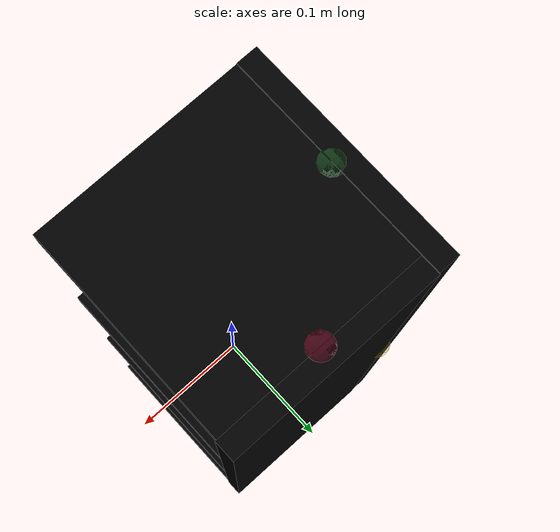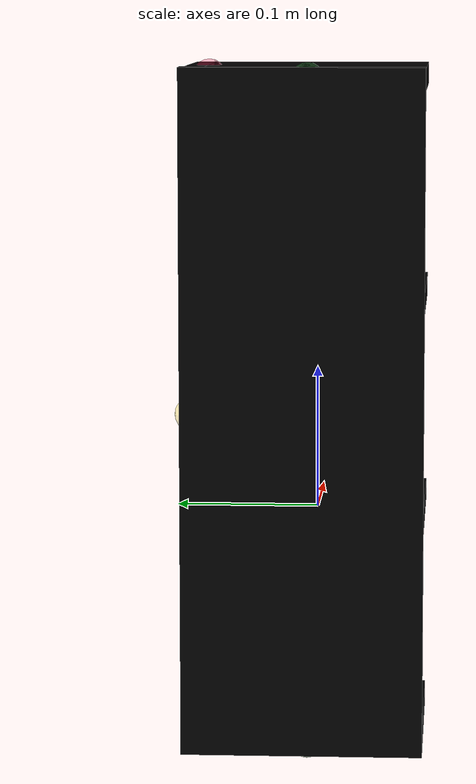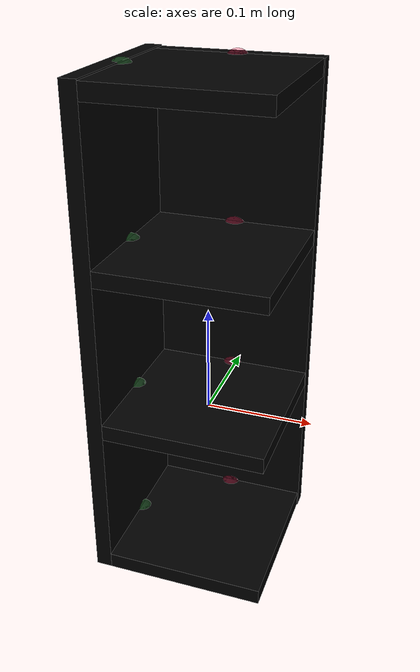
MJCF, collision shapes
<mujoco model="shelf_lillagen_0927">
    <custom>
        <numeric data="0.140321 0.26543 0.00759 0.999937 0.0 0.0 0.011207" name="0_part0_initpos"/>
        <numeric data="0.064424 0.045945 0.007465 0.502601 -0.502602 0.497385 -0.497385" name="5_part5_initpos"/>
        <numeric data="0.038382 -0.21002 0.00759 0.706675 -0.024703 -0.706675 -0.024703" name="4_part4_initpos"/>
        <numeric data="-0.36878 0.235998 0.00759 -0.995994 -0.0 0.0 -0.089418" name="3_part3_initpos"/>
        <numeric data="-0.123636 0.267952 0.00759 -0.998502 0.0 0.0 -0.054706" name="2_part2_initpos"/>
        <numeric data="0.401777 0.265276 0.00759 1.0 0.0 0.0 2.6e-05" name="1_part1_initpos"/>
    </custom>
    <asset>
        <mesh file="shelf_lillagen_0927/0.stl" name="part0" scale="0.0006 0.0006 0.0006"/>
        <mesh file="shelf_lillagen_0927/5.stl" name="part5" scale="0.0006 0.0006 0.0006"/>
        <mesh file="shelf_lillagen_0927/4.stl" name="part4" scale="0.0006 0.0006 0.0006"/>
        <mesh file="shelf_lillagen_0927/3.stl" name="part3" scale="0.0006 0.0006 0.0006"/>
        <mesh file="shelf_lillagen_0927/2.stl" name="part2" scale="0.0006 0.0006 0.0006"/>
        <mesh file="shelf_lillagen_0927/1.stl" name="part1" scale="0.0006 0.0006 0.0006"/>
    </asset>
    <equality>
        <weld active="false" body1="3_part3" body2="4_part4" solimp="1 1 0.5" solref="0.01 0.3"/>
        <weld active="false" body1="1_part1" body2="4_part4" solimp="1 1 0.5" solref="0.01 0.3"/>
        <weld active="false" body1="2_part2" body2="4_part4" solimp="1 1 0.5" solref="0.01 0.3"/>
        <weld active="false" body1="0_part0" body2="4_part4" solimp="1 1 0.5" solref="0.01 0.3"/>
        <weld active="false" body1="5_part5" body2="4_part4" solimp="1 1 0.5" solref="0.01 0.3"/>
        <weld active="false" body1="3_part3" body2="5_part5" solimp="1 1 0.5" solref="0.01 0.3"/>
        <weld active="false" body1="1_part1" body2="5_part5" solimp="1 1 0.5" solref="0.01 0.3"/>
        <weld active="false" body1="2_part2" body2="5_part5" solimp="1 1 0.5" solref="0.01 0.3"/>
        <weld active="false" body1="0_part0" body2="5_part5" solimp="1 1 0.5" solref="0.01 0.3"/>
    </equality>
    <worldbody>
        <body name="0_part0" pos="-0.0 0.0 0.0" quat="1 0 0 0">
            <geom conaffinity="0" contype="0" density="0" mesh="part0" name="0_part0_mesh" pos="0.0 0.0 0.0"
                  rgba="0.82 0.71 0.55 1" type="mesh"/>
            <site name="0_part0_horizontal_radius_site" pos="-0.0 0.0 0.0" quat="1 0 0 0" rgba="0 0 0 0" size="0.012"/>
            <site name="0_part0_top_site" pos="0.0 0.0 0.007619999999999999" quat="1 0 0 0" rgba="0 0 0 0"
                  size="0.012"/>
            <site name="0_part0_bottom_site" pos="0.0 0.0 -0.007619999999999999" quat="1 0 0 0" rgba="0 0 0 0"
                  size="0.012"/>
            <site name="0_part0_corner_site8" pos="-0.07619999999999999 0.07619999999999999 0.007619999999999999"
                  quat="1 0 0 0" rgba="0 0 0 0" size="0.012"/>
            <site name="0_part0_corner_site7" pos="0.07619999999999999 0.07619999999999999 0.007619999999999999"
                  quat="1 0 0 0" rgba="0 0 0 0" size="0.012"/>
            <site name="0_part0_corner_site6" pos="0.07619999999999999 -0.07619999999999999 0.007619999999999999"
                  quat="1 0 0 0" rgba="0 0 0 0" size="0.012"/>
            <site name="0_part0_corner_site5" pos="-0.07619999999999999 -0.07619999999999999 0.007619999999999999"
                  quat="1 0 0 0" rgba="0 0 0 0" size="0.012"/>
            <site name="0_part0_corner_site4" pos="-0.07619999999999999 0.07619999999999999 -0.007619999999999999"
                  quat="1 0 0 0" rgba="0 0 0 0" size="0.012"/>
            <site name="0_part0_corner_site3" pos="0.07619999999999999 0.07619999999999999 -0.007619999999999999"
                  quat="1 0 0 0" rgba="0 0 0 0" size="0.012"/>
            <site name="0_part0_corner_site2" pos="0.07619999999999999 -0.07619999999999999 -0.007619999999999999"
                  quat="1 0 0 0" rgba="0 0 0 0" size="0.012"/>
            <site name="0_part0_corner_site1" pos="-0.07619999999999999 -0.07619999999999999 -0.007619999999999999"
                  quat="1 0 0 0" rgba="0 0 0 0" size="0.012"/>
            <site name="panel-rightpanel,0,180,conn_site2" pos="0.0 0.07632 0.0" quat="0.7071067 -0.7071068 0 0"
                  rgba="0.9019 0.0980 0.2941 0.3" size="0.012"/>
            <site name="panel-leftpanel,0,180,conn_site3" pos="-0.07632 0.003810006 0.0" quat="0.7071067 0 -0.7071068 0"
                  rgba="0.2352 0.7058 0.2941 0.3" size="0.012"/>
            <geom density="50" name="noviz_collision_0_part0_0" pos="0.0 0.0 0.0" quat="1 0 0 0" rgba="0 0 0 0"
                  size="0.07619999999999999 0.07619999999999999 0.007619999999999999" solref="0.001 1" type="box"/>
        </body>
        <body name="5_part5" pos="-0.0 0.08382001188 0.07620000732" quat="1 0 0 0">
            <geom conaffinity="0" contype="0" density="0" mesh="part5" name="5_part5_mesh" pos="0.0 0.0 0.0"
                  rgba="0.82 0.71 0.55 1" type="mesh"/>
            <site name="5_part5_horizontal_radius_site" pos="0.0 5.999999999999999e-11 0.0" quat="1 0 0 0"
                  rgba="0 0 0 0" size="0.012"/>
            <site name="5_part5_top_site" pos="0.0 0.0 0.23622000731999998" quat="1 0 0 0" rgba="0 0 0 0" size="0.012"/>
            <site name="5_part5_bottom_site" pos="0.0 0.0 -0.23622000731999998" quat="1 0 0 0" rgba="0 0 0 0"
                  size="0.012"/>
            <site name="5_part5_corner_site8" pos="-0.07619999999999999 0.007620011879999999 0.23622000731999998"
                  quat="1 0 0 0" rgba="0 0 0 0" size="0.012"/>
            <site name="5_part5_corner_site7" pos="0.07619999999999999 0.007620011879999999 0.23622000731999998"
                  quat="1 0 0 0" rgba="0 0 0 0" size="0.012"/>
            <site name="5_part5_corner_site6" pos="0.07619999999999999 -0.00762001182 0.23622000731999998"
                  quat="1 0 0 0" rgba="0 0 0 0" size="0.012"/>
            <site name="5_part5_corner_site5" pos="-0.07619999999999999 -0.00762001182 0.23622000731999998"
                  quat="1 0 0 0" rgba="0 0 0 0" size="0.012"/>
            <site name="5_part5_corner_site4" pos="-0.07619999999999999 0.007620011879999999 -0.23622000731999998"
                  quat="1 0 0 0" rgba="0 0 0 0" size="0.012"/>
            <site name="5_part5_corner_site3" pos="0.07619999999999999 0.007620011879999999 -0.23622000731999998"
                  quat="1 0 0 0" rgba="0 0 0 0" size="0.012"/>
            <site name="5_part5_corner_site2" pos="0.07619999999999999 -0.00762001182 -0.23622000731999998"
                  quat="1 0 0 0" rgba="0 0 0 0" size="0.012"/>
            <site name="5_part5_corner_site1" pos="-0.07619999999999999 -0.00762001182 -0.23622000731999998"
                  quat="1 0 0 0" rgba="0 0 0 0" size="0.012"/>
            <site name="rightpanel-leftpanel,0,180,conn_site1"
                  pos="-0.07559999999999999 -0.0007800119999999998 -1.2e-08" quat="1 0 0 0" rgba="1.0 0.8823 0.0980 0.3"
                  size="0.012"/>
            <site name="rightpanel-panel,0,180,conn_site4" pos="0.0 -0.007380006 0.22859999999999997"
                  quat="0.7071067 -0.7071068 0 0" rgba="0.9019 0.0980 0.2941 0.3" size="0.012"/>
            <site name="rightpanel-panel,0,180,conn_site3" pos="0.0 -0.007500011999999999 0.07619999999999999"
                  quat="0.7071067 -0.7071068 0 0" rgba="0.9019 0.0980 0.2941 0.3" size="0.012"/>
            <site name="rightpanel-panel,0,180,conn_site2" pos="0.0 -0.007500011999999999 -0.07619999999999999"
                  quat="0.7071067 -0.7071068 0 0" rgba="0.9019 0.0980 0.2941 0.3" size="0.012"/>
            <site name="rightpanel-panel,0,180,conn_site1" pos="0.0 -0.007500011999999999 -0.22859999999999997"
                  quat="0.7071067 -0.7071068 0 0" rgba="0.9019 0.0980 0.2941 0.3" size="0.012"/>
            <geom density="50" name="noviz_collision_5_part5_0" pos="0.000276378 -6.228599999999999e-05 -1.2e-08"
                  quat="1 0 0 0" rgba="0 0 0 0" size="0.07647636 0.007557725999999999 0.23621999999999999"
                  solref="0.001 1" type="box"/>
        </body>
        <body name="4_part4" pos="-0.08381999904 0.007620009599999999 0.07620000732" quat="1 0 0 0">
            <geom conaffinity="0" contype="0" density="0" mesh="part4" name="4_part4_mesh" pos="0.0 0.0 0.0"
                  rgba="0.82 0.71 0.55 1" type="mesh"/>
            <site name="4_part4_horizontal_radius_site" pos="1.1999999999999997e-10 -2.28e-09 0.0" quat="1 0 0 0"
                  rgba="0 0 0 0" size="0.012"/>
            <site name="4_part4_top_site" pos="5.999999999999999e-11 -2.28e-09 0.23622000731999998" quat="1 0 0 0"
                  rgba="0 0 0 0" size="0.012"/>
            <site name="4_part4_bottom_site" pos="5.999999999999999e-11 -2.28e-09 -0.23622000731999998" quat="1 0 0 0"
                  rgba="0 0 0 0" size="0.012"/>
            <site name="4_part4_corner_site8" pos="-0.007620000839999999 0.08382000732 0.23622000731999998"
                  quat="1 0 0 0" rgba="0 0 0 0" size="0.012"/>
            <site name="4_part4_corner_site7" pos="0.007620001019999999 0.08382000732 0.23622000731999998"
                  quat="1 0 0 0" rgba="0 0 0 0" size="0.012"/>
            <site name="4_part4_corner_site6" pos="0.007620001019999999 -0.08382001182 0.23622000731999998"
                  quat="1 0 0 0" rgba="0 0 0 0" size="0.012"/>
            <site name="4_part4_corner_site5" pos="-0.007620000839999999 -0.08382001182 0.23622000731999998"
                  quat="1 0 0 0" rgba="0 0 0 0" size="0.012"/>
            <site name="4_part4_corner_site4" pos="-0.007620000839999999 0.08382000732 -0.23622000731999998"
                  quat="1 0 0 0" rgba="0 0 0 0" size="0.012"/>
            <site name="4_part4_corner_site3" pos="0.007620001019999999 0.08382000732 -0.23622000731999998"
                  quat="1 0 0 0" rgba="0 0 0 0" size="0.012"/>
            <site name="4_part4_corner_site2" pos="0.007620001019999999 -0.08382001182 -0.23622000731999998"
                  quat="1 0 0 0" rgba="0 0 0 0" size="0.012"/>
            <site name="4_part4_corner_site1" pos="-0.007620000839999999 -0.08382001182 -0.23622000731999998"
                  quat="1 0 0 0" rgba="0 0 0 0" size="0.012"/>
            <site name="leftpanel-rightpanel,0,180,conn_site1" pos="0.008219999999999998 0.07542 -1.2e-08"
                  quat="1 0 0 0" rgba="1.0 0.8823 0.0980 0.3" size="0.012"/>
            <site name="leftpanel-panel,0,180,conn_site4" pos="0.0075 -0.003810006 -0.22859999999999997"
                  quat="0.7071067 0 -0.7071068 0" rgba="0.2352 0.7058 0.2941 0.3" size="0.012"/>
            <site name="leftpanel-panel,0,180,conn_site3" pos="0.0075 -0.003810006 -0.07619999999999999"
                  quat="0.7071067 0 -0.7071068 0" rgba="0.2352 0.7058 0.2941 0.3" size="0.012"/>
            <site name="leftpanel-panel,0,180,conn_site2" pos="0.0075 -0.003810006 0.07619999999999999"
                  quat="0.7071067 0 -0.7071068 0" rgba="0.2352 0.7058 0.2941 0.3" size="0.012"/>
            <site name="leftpanel-panel,0,180,conn_site1" pos="0.0075 -0.003810006 0.22859999999999997"
                  quat="0.7071067 0 -0.7071068 0" rgba="0.2352 0.7058 0.2941 0.3" size="0.012"/>
            <geom density="50" name="noviz_collision_4_part4_0"
                  pos="6.906599999999999e-05 -0.00036487799999999996 0.000610164" quat="1 0 0 0" rgba="0 0 0 0"
                  size="0.007689066 0.08345514 0.23683019999999996" solref="0.001 1" type="box"/>
        </body>
        <body name="3_part3" pos="-0.0 4.56e-09 0.30480000731999995" quat="1 0 0 0">
            <geom conaffinity="0" contype="0" density="0" mesh="part3" name="3_part3_mesh" pos="0.0 0.0 0.0"
                  rgba="0.82 0.71 0.55 1" type="mesh"/>
            <site name="3_part3_horizontal_radius_site" pos="0.0 5.999999999999999e-11 0.0" quat="1 0 0 0"
                  rgba="0 0 0 0" size="0.012"/>
            <site name="3_part3_top_site" pos="0.0 5.999999999999999e-11 0.007620007319999999" quat="1 0 0 0"
                  rgba="0 0 0 0" size="0.012"/>
            <site name="3_part3_bottom_site" pos="0.0 5.999999999999999e-11 -0.007620007319999999" quat="1 0 0 0"
                  rgba="0 0 0 0" size="0.012"/>
            <site name="3_part3_corner_site8" pos="-0.07619999999999999 0.07620000455999999 0.007620007319999999"
                  quat="1 0 0 0" rgba="0 0 0 0" size="0.012"/>
            <site name="3_part3_corner_site7" pos="0.07619999999999999 0.07620000455999999 0.007620007319999999"
                  quat="1 0 0 0" rgba="0 0 0 0" size="0.012"/>
            <site name="3_part3_corner_site6" pos="0.07619999999999999 -0.07620000449999999 0.007620007319999999"
                  quat="1 0 0 0" rgba="0 0 0 0" size="0.012"/>
            <site name="3_part3_corner_site5" pos="-0.07619999999999999 -0.07620000449999999 0.007620007319999999"
                  quat="1 0 0 0" rgba="0 0 0 0" size="0.012"/>
            <site name="3_part3_corner_site4" pos="-0.07619999999999999 0.07620000455999999 -0.007620007319999999"
                  quat="1 0 0 0" rgba="0 0 0 0" size="0.012"/>
            <site name="3_part3_corner_site3" pos="0.07619999999999999 0.07620000455999999 -0.007620007319999999"
                  quat="1 0 0 0" rgba="0 0 0 0" size="0.012"/>
            <site name="3_part3_corner_site2" pos="0.07619999999999999 -0.07620000449999999 -0.007620007319999999"
                  quat="1 0 0 0" rgba="0 0 0 0" size="0.012"/>
            <site name="3_part3_corner_site1" pos="-0.07619999999999999 -0.07620000449999999 -0.007620007319999999"
                  quat="1 0 0 0" rgba="0 0 0 0" size="0.012"/>
            <site name="panel-rightpanel,0,180,conn_site4" pos="0.0 0.07644 0.0" quat="0.7071067 -0.7071068 0 0"
                  rgba="0.9019 0.0980 0.2941 0.3" size="0.012"/>
            <site name="panel-leftpanel,0,180,conn_site1" pos="-0.07632 0.0038099999999999996 0.0"
                  quat="0.7071067 0 -0.7071068 0" rgba="0.2352 0.7058 0.2941 0.3" size="0.012"/>
            <geom density="50" name="noviz_collision_3_part3_0"
                  pos="-0.00021655799999999997 0.00021655199999999998 1.5251999999999999e-05" quat="1 0 0 0"
                  rgba="0 0 0 0" size="0.07598345999999999 0.07641653999999999 0.007635257999999999" solref="0.001 1"
                  type="box"/>
        </body>
        <body name="2_part2" pos="-0.0 4.56e-09 -0.15239999999999998" quat="1 0 0 0">
            <geom conaffinity="0" contype="0" density="0" mesh="part2" name="2_part2_mesh" pos="0.0 0.0 0.0"
                  rgba="0.82 0.71 0.55 1" type="mesh"/>
            <site name="2_part2_horizontal_radius_site" pos="0.0 5.999999999999999e-11 0.0" quat="1 0 0 0"
                  rgba="0 0 0 0" size="0.012"/>
            <site name="2_part2_top_site" pos="0.0 5.999999999999999e-11 0.007619999999999999" quat="1 0 0 0"
                  rgba="0 0 0 0" size="0.012"/>
            <site name="2_part2_bottom_site" pos="0.0 5.999999999999999e-11 -0.007619999999999999" quat="1 0 0 0"
                  rgba="0 0 0 0" size="0.012"/>
            <site name="2_part2_corner_site8" pos="-0.07619999999999999 0.07620000455999999 0.007619999999999999"
                  quat="1 0 0 0" rgba="0 0 0 0" size="0.012"/>
            <site name="2_part2_corner_site7" pos="0.07619999999999999 0.07620000455999999 0.007619999999999999"
                  quat="1 0 0 0" rgba="0 0 0 0" size="0.012"/>
            <site name="2_part2_corner_site6" pos="0.07619999999999999 -0.07620000449999999 0.007619999999999999"
                  quat="1 0 0 0" rgba="0 0 0 0" size="0.012"/>
            <site name="2_part2_corner_site5" pos="-0.07619999999999999 -0.07620000449999999 0.007619999999999999"
                  quat="1 0 0 0" rgba="0 0 0 0" size="0.012"/>
            <site name="2_part2_corner_site4" pos="-0.07619999999999999 0.07620000455999999 -0.007619999999999999"
                  quat="1 0 0 0" rgba="0 0 0 0" size="0.012"/>
            <site name="2_part2_corner_site3" pos="0.07619999999999999 0.07620000455999999 -0.007619999999999999"
                  quat="1 0 0 0" rgba="0 0 0 0" size="0.012"/>
            <site name="2_part2_corner_site2" pos="0.07619999999999999 -0.07620000449999999 -0.007619999999999999"
                  quat="1 0 0 0" rgba="0 0 0 0" size="0.012"/>
            <site name="2_part2_corner_site1" pos="-0.07619999999999999 -0.07620000449999999 -0.007619999999999999"
                  quat="1 0 0 0" rgba="0 0 0 0" size="0.012"/>
            <site name="panel-rightpanel,0,180,conn_site1" pos="0.0 0.07632 0.0" quat="0.7071067 -0.7071068 0 0"
                  rgba="0.9019 0.0980 0.2941 0.3" size="0.012"/>
            <site name="panel-leftpanel,0,180,conn_site4" pos="-0.07632 0.0038099999999999996 0.0"
                  quat="0.7071067 0 -0.7071068 0" rgba="0.2352 0.7058 0.2941 0.3" size="0.012"/>
            <geom density="50" name="noviz_collision_2_part2_0"
                  pos="-0.00021655799999999997 0.00021655199999999998 1.5251999999999999e-05" quat="1 0 0 0"
                  rgba="0 0 0 0" size="0.07598345999999999 0.07641653999999999 0.007635257999999999" solref="0.001 1"
                  type="box"/>
        </body>
        <body name="1_part1" pos="-0.0 0.0 0.15239999999999998" quat="1 0 0 0">
            <geom conaffinity="0" contype="0" density="0" mesh="part1" name="1_part1_mesh" pos="0.0 0.0 0.0"
                  rgba="0.82 0.71 0.55 1" type="mesh"/>
            <site name="1_part1_horizontal_radius_site" pos="-0.0 0.0 -0.0" quat="1 0 0 0" rgba="0 0 0 0" size="0.012"/>
            <site name="1_part1_top_site" pos="0.0 0.0 0.007619999999999999" quat="1 0 0 0" rgba="0 0 0 0"
                  size="0.012"/>
            <site name="1_part1_bottom_site" pos="0.0 0.0 -0.007619999999999999" quat="1 0 0 0" rgba="0 0 0 0"
                  size="0.012"/>
            <site name="1_part1_corner_site8" pos="-0.07619999999999999 0.07619999999999999 0.007619999999999999"
                  quat="1 0 0 0" rgba="0 0 0 0" size="0.012"/>
            <site name="1_part1_corner_site7" pos="0.07619999999999999 0.07619999999999999 0.007619999999999999"
                  quat="1 0 0 0" rgba="0 0 0 0" size="0.012"/>
            <site name="1_part1_corner_site6" pos="0.07619999999999999 -0.07619999999999999 0.007619999999999999"
                  quat="1 0 0 0" rgba="0 0 0 0" size="0.012"/>
            <site name="1_part1_corner_site5" pos="-0.07619999999999999 -0.07619999999999999 0.007619999999999999"
                  quat="1 0 0 0" rgba="0 0 0 0" size="0.012"/>
            <site name="1_part1_corner_site4" pos="-0.07619999999999999 0.07619999999999999 -0.007619999999999999"
                  quat="1 0 0 0" rgba="0 0 0 0" size="0.012"/>
            <site name="1_part1_corner_site3" pos="0.07619999999999999 0.07619999999999999 -0.007619999999999999"
                  quat="1 0 0 0" rgba="0 0 0 0" size="0.012"/>
            <site name="1_part1_corner_site2" pos="0.07619999999999999 -0.07619999999999999 -0.007619999999999999"
                  quat="1 0 0 0" rgba="0 0 0 0" size="0.012"/>
            <site name="1_part1_corner_site1" pos="-0.07619999999999999 -0.07619999999999999 -0.007619999999999999"
                  quat="1 0 0 0" rgba="0 0 0 0" size="0.012"/>
            <site name="panel-rightpanel,0,180,conn_site3" pos="0.0 0.07632 0.0" quat="0.7071067 -0.7071068 0 0"
                  rgba="0.9019 0.0980 0.2941 0.3" size="0.012"/>
            <site name="panel-leftpanel,0,180,conn_site2" pos="-0.07632 0.003810006 0.0" quat="0.7071067 0 -0.7071068 0"
                  rgba="0.2352 0.7058 0.2941 0.3" size="0.012"/>
            <geom density="50" name="noviz_collision_1_part1_0" pos="0.0 0.0 0.0" quat="1 0 0 0" rgba="0 0 0 0"
                  size="0.07619999999999999 0.07619999999999999 0.007619999999999999" solref="0.001 1" type="box"/>
        </body>
    </worldbody>
    <actuator/>
    <sensor/>
    <contact/>
    <default/>
</mujoco>
